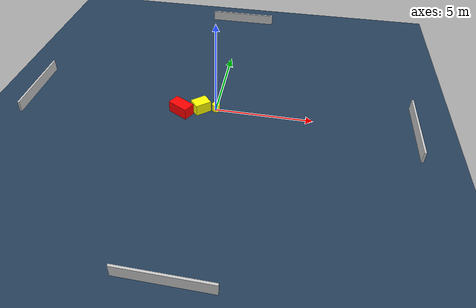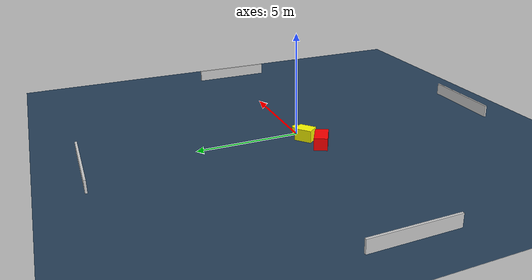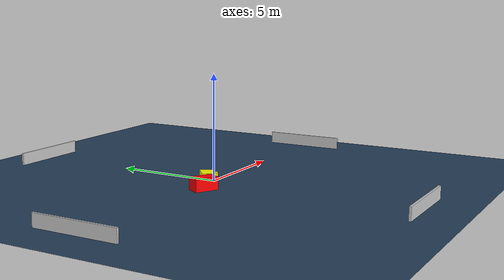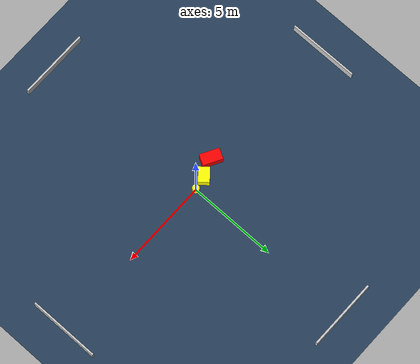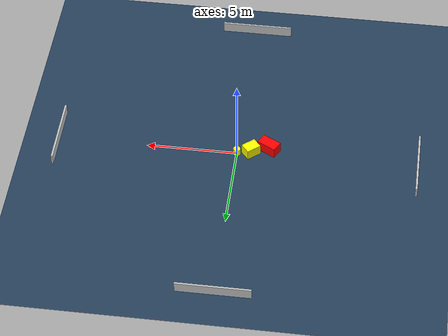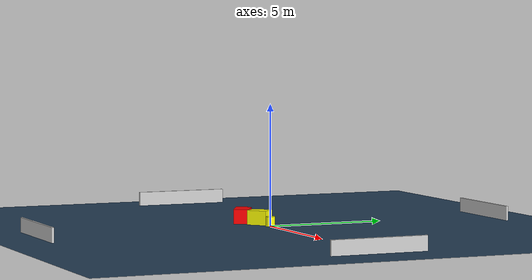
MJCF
<?xml version="1.0" ?>
<mujoco model="generated_environment">
  <option timestep="0.01" integrator="RK4" cone="elliptic"/>
  <default>
    <geom density="1"/>
  </default>
  <asset>
    <texture builtin="gradient" height="3072" name="skybox" rgb1="0.3 0.5 0.7" rgb2="0 0 0" type="skybox" width="512"/>
    <texture builtin="checker" height="300" name="groundplane" rgb1="0.2 0.3 0.4" rgb2="0.1 0.2 0.3" type="2d" width="300"/>
    <material name="groundplane" reflectance="0.2" texrepeat="5 5" texture="groundplane"/>
  </asset>
  <worldbody>
    <light dir="0 0 -1" directional="true" pos="0 0 1.5"/>
    <geom condim="3" friction="0.5 0.005 0.001" material="groundplane" name="floor" pos="0 0 0" size="0 0 0.05" type="plane"/>
    <body name="walls">
      <geom name="wall_1" condim="4" pos="-10.0 0.0 0.3" rgba="0.800000011920929 0.800000011920929 0.800000011920929 1.0" size="0.05 2.0 0.3" type="box"/>
      <geom name="wall_2" condim="4" pos="10.0 0.0 0.3" rgba="0.800000011920929 0.800000011920929 0.800000011920929 1.0" size="0.05 2.0 0.3" type="box"/>
      <geom name="wall_3" condim="4" pos="0.0 -10.0 0.3" rgba="0.800000011920929 0.800000011920929 0.800000011920929 1.0" size="2.0 0.05 0.3" type="box"/>
      <geom name="wall_4" condim="4" pos="0.0 10.0 0.3" rgba="0.800000011920929 0.800000011920929 0.800000011920929 1.0" size="2.0 0.05 0.3" type="box"/>
    </body>
    <body name="robot">
      <joint name="joint_x" type="slide" pos="0 0 0" axis="1 0 0"/>
      <joint name="joint_y" type="slide" pos="0 0 0" axis="0 1 0"/>
      <geom name="robot" type="cylinder" pos="0.0 0.0 0.2" size="0.2 0.2 0.0" mass="5.0" friction="1.0 0.005 0.0001" condim="4" rgba="1.0 1.0 0.0 1.0"/>
    </body>
    <body name="obstacle_1_movable">
      <geom name="obstacle_1_movable" condim="4" pos="-0.7734716795038822 -0.139976912250932 0.3" euler="0 0 39.77908907469491" friction="0.0 0.005 0.001" rgba="1.0 1.0 0.0 1.0" size="0.4206678598917383 0.3121459396063442 0.3" type="box" mass="0.1"/>
      <joint type="free"/>
    </body>
    <body name="obstacle_2_static">
      <geom name="obstacle_2_static" condim="4" pos="-1.732660565714635 -0.5025307384661626 0.3" euler="0 0 240.99575996515455" friction="0.0 0.005 0.001" rgba="1.0 0.0 0.0 1.0" size="0.31798331714260386 0.5617820033988759 0.3" type="box"/>
    </body>
  </worldbody>
  <actuator>
    <motor name="actuator_x" joint="joint_x" gear="1" ctrlrange="-1 1"/>
    <motor name="actuator_y" joint="joint_y" gear="1" ctrlrange="-1 1"/>
  </actuator>
</mujoco>
